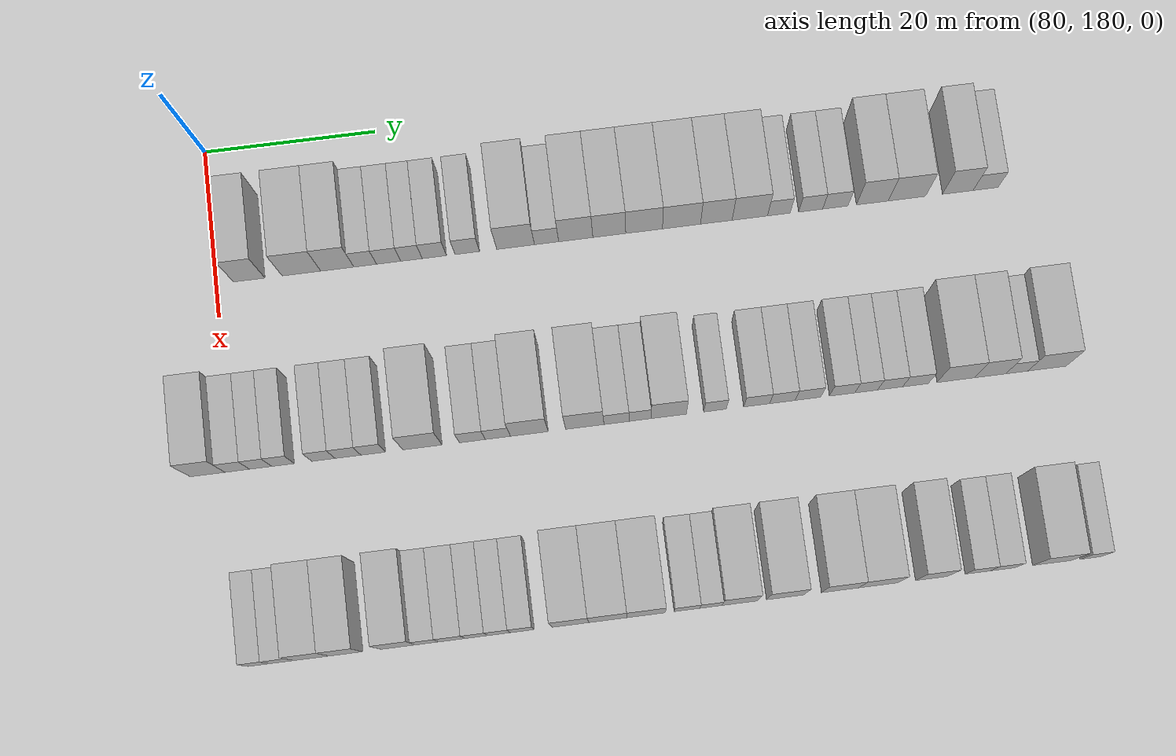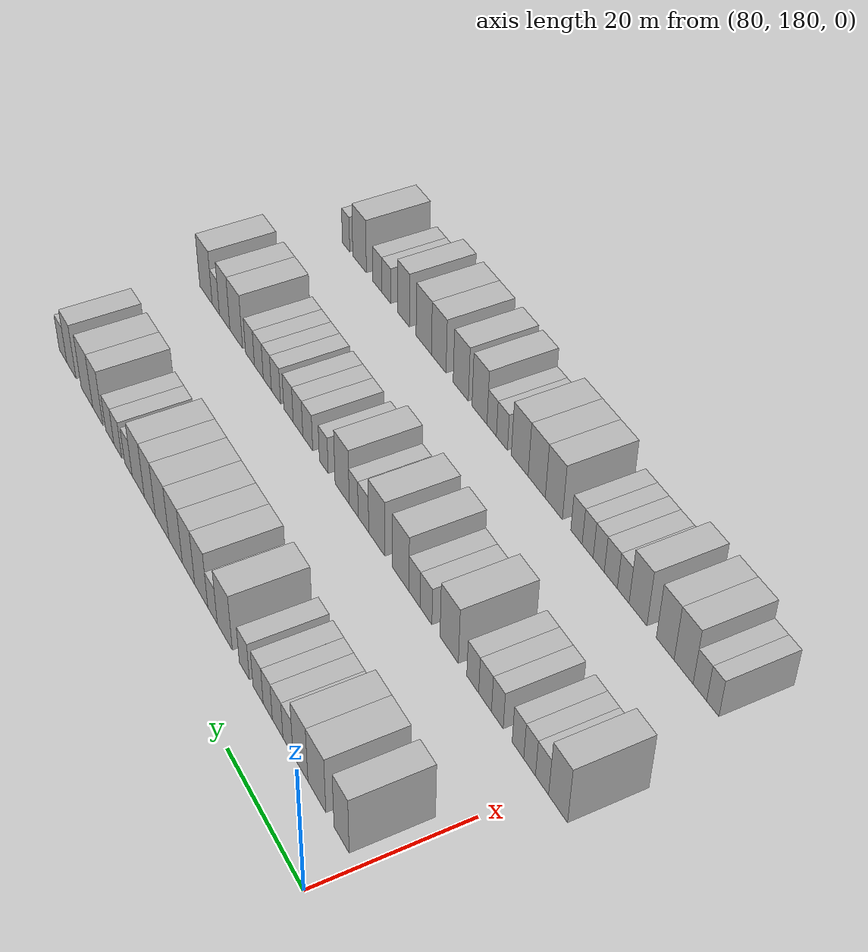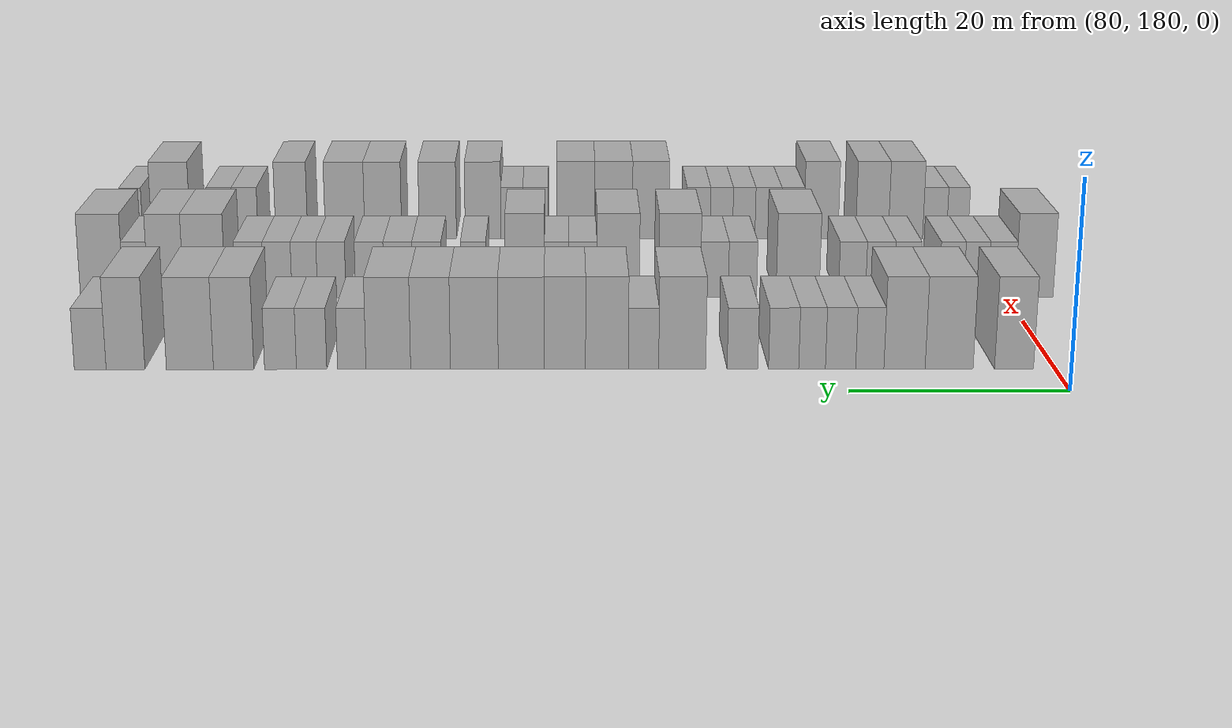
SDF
<sdf version="1.6">
 <world name="default">
  <model name="building_701">
   <static>1</static>
   <pose>91.0000 183.8301 0 0.000000 0.000000 0.000000</pose>
   <link name="link">
    <pose>0 0 4.50 0 0 0</pose>
    <collision name="collision"><geometry><box><size>10.0000 3.6454 9.0000</size></box></geometry></collision>
    <visual name="visual">
     <cast_shadows>0</cast_shadows>
     <geometry><box><size>10.0000 3.6454 9.0000</size></box></geometry>
     <material>
      <script>
       <uri>model://HANNAS_wall/materials/scripts</uri>
       <uri>model://HANNAS_wall/materials/textures</uri>
       <name>vrc/HANNAS_wall</name>
      </script>
     </material>
    </visual>
   </link>
  </model>
  <model name="building_702">
   <static>1</static>
   <pose>91.0000 189.8946 0 0.000000 0.000000 0.000000</pose>
   <link name="link">
    <pose>0 0 4.50 0 0 0</pose>
    <collision name="collision"><geometry><box><size>10.0000 4.4837 9.0000</size></box></geometry></collision>
    <visual name="visual">
     <cast_shadows>0</cast_shadows>
     <geometry><box><size>10.0000 4.4837 9.0000</size></box></geometry>
     <material>
      <script>
       <uri>model://HANNAS_wall/materials/scripts</uri>
       <uri>model://HANNAS_wall/materials/textures</uri>
       <name>vrc/HANNAS_wall</name>
      </script>
     </material>
    </visual>
   </link>
  </model>
  <model name="building_703">
   <static>1</static>
   <pose>91.0000 194.0625 0 0.000000 0.000000 0.000000</pose>
   <link name="link">
    <pose>0 0 4.50 0 0 0</pose>
    <collision name="collision"><geometry><box><size>10.0000 3.8520 9.0000</size></box></geometry></collision>
    <visual name="visual">
     <cast_shadows>0</cast_shadows>
     <geometry><box><size>10.0000 3.8520 9.0000</size></box></geometry>
     <material>
      <script>
       <uri>model://HANNAS_wall/materials/scripts</uri>
       <uri>model://HANNAS_wall/materials/textures</uri>
       <name>vrc/HANNAS_wall</name>
      </script>
     </material>
    </visual>
   </link>
  </model>
  <model name="building_704">
   <static>1</static>
   <pose>91.0000 197.3091 0 0.000000 0.000000 0.000000</pose>
   <link name="link">
    <pose>0 0 3.00 0 0 0</pose>
    <collision name="collision"><geometry><box><size>10.0000 2.6413 6.0000</size></box></geometry></collision>
    <visual name="visual">
     <cast_shadows>0</cast_shadows>
     <geometry><box><size>10.0000 2.6413 6.0000</size></box></geometry>
     <material>
      <script>
       <uri>model://HANNAS_wall/materials/scripts</uri>
       <uri>model://HANNAS_wall/materials/textures</uri>
       <name>vrc/HANNAS_wall</name>
      </script>
     </material>
    </visual>
   </link>
  </model>
  <model name="building_705">
   <static>1</static>
   <pose>91.0000 200.0430 0 0.000000 0.000000 0.000000</pose>
   <link name="link">
    <pose>0 0 3.00 0 0 0</pose>
    <collision name="collision"><geometry><box><size>10.0000 2.8265 6.0000</size></box></geometry></collision>
    <visual name="visual">
     <cast_shadows>0</cast_shadows>
     <geometry><box><size>10.0000 2.8265 6.0000</size></box></geometry>
     <material>
      <script>
       <uri>model://HANNAS_wall/materials/scripts</uri>
       <uri>model://HANNAS_wall/materials/textures</uri>
       <name>vrc/HANNAS_wall</name>
      </script>
     </material>
    </visual>
   </link>
  </model>
  <model name="building_706">
   <static>1</static>
   <pose>91.0000 202.7038 0 0.000000 0.000000 0.000000</pose>
   <link name="link">
    <pose>0 0 3.00 0 0 0</pose>
    <collision name="collision"><geometry><box><size>10.0000 2.4952 6.0000</size></box></geometry></collision>
    <visual name="visual">
     <cast_shadows>0</cast_shadows>
     <geometry><box><size>10.0000 2.4952 6.0000</size></box></geometry>
     <material>
      <script>
       <uri>model://HANNAS_wall/materials/scripts</uri>
       <uri>model://HANNAS_wall/materials/textures</uri>
       <name>vrc/HANNAS_wall</name>
      </script>
     </material>
    </visual>
   </link>
  </model>
  <model name="building_707">
   <static>1</static>
   <pose>91.0000 205.3618 0 0.000000 0.000000 0.000000</pose>
   <link name="link">
    <pose>0 0 3.00 0 0 0</pose>
    <collision name="collision"><geometry><box><size>10.0000 2.8207 6.0000</size></box></geometry></collision>
    <visual name="visual">
     <cast_shadows>0</cast_shadows>
     <geometry><box><size>10.0000 2.8207 6.0000</size></box></geometry>
     <material>
      <script>
       <uri>model://HANNAS_wall/materials/scripts</uri>
       <uri>model://HANNAS_wall/materials/textures</uri>
       <name>vrc/HANNAS_wall</name>
      </script>
     </material>
    </visual>
   </link>
  </model>
  <model name="building_708">
   <static>1</static>
   <pose>91.0000 209.2050 0 0.000000 0.000000 0.000000</pose>
   <link name="link">
    <pose>0 0 3.00 0 0 0</pose>
    <collision name="collision"><geometry><box><size>10.0000 2.8657 6.0000</size></box></geometry></collision>
    <visual name="visual">
     <cast_shadows>0</cast_shadows>
     <geometry><box><size>10.0000 2.8657 6.0000</size></box></geometry>
     <material>
      <script>
       <uri>model://HANNAS_wall/materials/scripts</uri>
       <uri>model://HANNAS_wall/materials/textures</uri>
       <name>vrc/HANNAS_wall</name>
      </script>
     </material>
    </visual>
   </link>
  </model>
  <model name="building_709">
   <static>1</static>
   <pose>91.0000 214.8375 0 0.000000 0.000000 0.000000</pose>
   <link name="link">
    <pose>0 0 4.50 0 0 0</pose>
    <collision name="collision"><geometry><box><size>10.0000 4.3994 9.0000</size></box></geometry></collision>
    <visual name="visual">
     <cast_shadows>0</cast_shadows>
     <geometry><box><size>10.0000 4.3994 9.0000</size></box></geometry>
     <material>
      <script>
       <uri>model://HANNAS_wall/materials/scripts</uri>
       <uri>model://HANNAS_wall/materials/textures</uri>
       <name>vrc/HANNAS_wall</name>
      </script>
     </material>
    </visual>
   </link>
  </model>
  <model name="building_710">
   <static>1</static>
   <pose>91.0000 218.4548 0 0.000000 0.000000 0.000000</pose>
   <link name="link">
    <pose>0 0 3.00 0 0 0</pose>
    <collision name="collision"><geometry><box><size>10.0000 2.8352 6.0000</size></box></geometry></collision>
    <visual name="visual">
     <cast_shadows>0</cast_shadows>
     <geometry><box><size>10.0000 2.8352 6.0000</size></box></geometry>
     <material>
      <script>
       <uri>model://HANNAS_wall/materials/scripts</uri>
       <uri>model://HANNAS_wall/materials/textures</uri>
       <name>vrc/HANNAS_wall</name>
      </script>
     </material>
    </visual>
   </link>
  </model>
  <model name="building_711">
   <static>1</static>
   <pose>91.0000 221.8675 0 0.000000 0.000000 0.000000</pose>
   <link name="link">
    <pose>0 0 4.50 0 0 0</pose>
    <collision name="collision"><geometry><box><size>10.0000 3.9902 9.0000</size></box></geometry></collision>
    <visual name="visual">
     <cast_shadows>0</cast_shadows>
     <geometry><box><size>10.0000 3.9902 9.0000</size></box></geometry>
     <material>
      <script>
       <uri>model://HANNAS_wall/materials/scripts</uri>
       <uri>model://HANNAS_wall/materials/textures</uri>
       <name>vrc/HANNAS_wall</name>
      </script>
     </material>
    </visual>
   </link>
  </model>
  <model name="building_712">
   <static>1</static>
   <pose>91.0000 225.7885 0 0.000000 0.000000 0.000000</pose>
   <link name="link">
    <pose>0 0 4.50 0 0 0</pose>
    <collision name="collision"><geometry><box><size>10.0000 3.8519 9.0000</size></box></geometry></collision>
    <visual name="visual">
     <cast_shadows>0</cast_shadows>
     <geometry><box><size>10.0000 3.8519 9.0000</size></box></geometry>
     <material>
      <script>
       <uri>model://HANNAS_wall/materials/scripts</uri>
       <uri>model://HANNAS_wall/materials/textures</uri>
       <name>vrc/HANNAS_wall</name>
      </script>
     </material>
    </visual>
   </link>
  </model>
  <model name="building_713">
   <static>1</static>
   <pose>91.0000 229.8638 0 0.000000 0.000000 0.000000</pose>
   <link name="link">
    <pose>0 0 4.50 0 0 0</pose>
    <collision name="collision"><geometry><box><size>10.0000 4.2986 9.0000</size></box></geometry></collision>
    <visual name="visual">
     <cast_shadows>0</cast_shadows>
     <geometry><box><size>10.0000 4.2986 9.0000</size></box></geometry>
     <material>
      <script>
       <uri>model://HANNAS_wall/materials/scripts</uri>
       <uri>model://HANNAS_wall/materials/textures</uri>
       <name>vrc/HANNAS_wall</name>
      </script>
     </material>
    </visual>
   </link>
  </model>
  <model name="building_714">
   <static>1</static>
   <pose>91.0000 234.2440 0 0.000000 0.000000 0.000000</pose>
   <link name="link">
    <pose>0 0 4.50 0 0 0</pose>
    <collision name="collision"><geometry><box><size>10.0000 4.4618 9.0000</size></box></geometry></collision>
    <visual name="visual">
     <cast_shadows>0</cast_shadows>
     <geometry><box><size>10.0000 4.4618 9.0000</size></box></geometry>
     <material>
      <script>
       <uri>model://HANNAS_wall/materials/scripts</uri>
       <uri>model://HANNAS_wall/materials/textures</uri>
       <name>vrc/HANNAS_wall</name>
      </script>
     </material>
    </visual>
   </link>
  </model>
  <model name="building_715">
   <static>1</static>
   <pose>91.0000 238.3309 0 0.000000 0.000000 0.000000</pose>
   <link name="link">
    <pose>0 0 4.50 0 0 0</pose>
    <collision name="collision"><geometry><box><size>10.0000 3.7121 9.0000</size></box></geometry></collision>
    <visual name="visual">
     <cast_shadows>0</cast_shadows>
     <geometry><box><size>10.0000 3.7121 9.0000</size></box></geometry>
     <material>
      <script>
       <uri>model://HANNAS_wall/materials/scripts</uri>
       <uri>model://HANNAS_wall/materials/textures</uri>
       <name>vrc/HANNAS_wall</name>
      </script>
     </material>
    </visual>
   </link>
  </model>
  <model name="building_716">
   <static>1</static>
   <pose>91.0000 242.2716 0 0.000000 0.000000 0.000000</pose>
   <link name="link">
    <pose>0 0 4.50 0 0 0</pose>
    <collision name="collision"><geometry><box><size>10.0000 4.1693 9.0000</size></box></geometry></collision>
    <visual name="visual">
     <cast_shadows>0</cast_shadows>
     <geometry><box><size>10.0000 4.1693 9.0000</size></box></geometry>
     <material>
      <script>
       <uri>model://HANNAS_wall/materials/scripts</uri>
       <uri>model://HANNAS_wall/materials/textures</uri>
       <name>vrc/HANNAS_wall</name>
      </script>
     </material>
    </visual>
   </link>
  </model>
  <model name="building_717">
   <static>1</static>
   <pose>91.0000 245.6842 0 0.000000 0.000000 0.000000</pose>
   <link name="link">
    <pose>0 0 3.00 0 0 0</pose>
    <collision name="collision"><geometry><box><size>10.0000 2.6557 6.0000</size></box></geometry></collision>
    <visual name="visual">
     <cast_shadows>0</cast_shadows>
     <geometry><box><size>10.0000 2.6557 6.0000</size></box></geometry>
     <material>
      <script>
       <uri>model://HANNAS_wall/materials/scripts</uri>
       <uri>model://HANNAS_wall/materials/textures</uri>
       <name>vrc/HANNAS_wall</name>
      </script>
     </material>
    </visual>
   </link>
  </model>
  <model name="building_718">
   <static>1</static>
   <pose>91.0000 249.4294 0 0.000000 0.000000 0.000000</pose>
   <link name="link">
    <pose>0 0 3.00 0 0 0</pose>
    <collision name="collision"><geometry><box><size>10.0000 2.8348 6.0000</size></box></geometry></collision>
    <visual name="visual">
     <cast_shadows>0</cast_shadows>
     <geometry><box><size>10.0000 2.8348 6.0000</size></box></geometry>
     <material>
      <script>
       <uri>model://HANNAS_wall/materials/scripts</uri>
       <uri>model://HANNAS_wall/materials/textures</uri>
       <name>vrc/HANNAS_wall</name>
      </script>
     </material>
    </visual>
   </link>
  </model>
  <model name="building_719">
   <static>1</static>
   <pose>91.0000 252.3336 0 0.000000 0.000000 0.000000</pose>
   <link name="link">
    <pose>0 0 3.00 0 0 0</pose>
    <collision name="collision"><geometry><box><size>10.0000 2.9736 6.0000</size></box></geometry></collision>
    <visual name="visual">
     <cast_shadows>0</cast_shadows>
     <geometry><box><size>10.0000 2.9736 6.0000</size></box></geometry>
     <material>
      <script>
       <uri>model://HANNAS_wall/materials/scripts</uri>
       <uri>model://HANNAS_wall/materials/textures</uri>
       <name>vrc/HANNAS_wall</name>
      </script>
     </material>
    </visual>
   </link>
  </model>
  <model name="building_720">
   <static>1</static>
   <pose>91.0000 256.7059 0 0.000000 0.000000 0.000000</pose>
   <link name="link">
    <pose>0 0 4.50 0 0 0</pose>
    <collision name="collision"><geometry><box><size>10.0000 3.7710 9.0000</size></box></geometry></collision>
    <visual name="visual">
     <cast_shadows>0</cast_shadows>
     <geometry><box><size>10.0000 3.7710 9.0000</size></box></geometry>
     <material>
      <script>
       <uri>model://HANNAS_wall/materials/scripts</uri>
       <uri>model://HANNAS_wall/materials/textures</uri>
       <name>vrc/HANNAS_wall</name>
      </script>
     </material>
    </visual>
   </link>
  </model>
  <model name="building_721">
   <static>1</static>
   <pose>91.0000 260.7851 0 0.000000 0.000000 0.000000</pose>
   <link name="link">
    <pose>0 0 4.50 0 0 0</pose>
    <collision name="collision"><geometry><box><size>10.0000 4.3874 9.0000</size></box></geometry></collision>
    <visual name="visual">
     <cast_shadows>0</cast_shadows>
     <geometry><box><size>10.0000 4.3874 9.0000</size></box></geometry>
     <material>
      <script>
       <uri>model://HANNAS_wall/materials/scripts</uri>
       <uri>model://HANNAS_wall/materials/textures</uri>
       <name>vrc/HANNAS_wall</name>
      </script>
     </material>
    </visual>
   </link>
  </model>
  <model name="building_722">
   <static>1</static>
   <pose>91.0000 266.7912 0 0.000000 0.000000 0.000000</pose>
   <link name="link">
    <pose>0 0 4.50 0 0 0</pose>
    <collision name="collision"><geometry><box><size>10.0000 3.6249 9.0000</size></box></geometry></collision>
    <visual name="visual">
     <cast_shadows>0</cast_shadows>
     <geometry><box><size>10.0000 3.6249 9.0000</size></box></geometry>
     <material>
      <script>
       <uri>model://HANNAS_wall/materials/scripts</uri>
       <uri>model://HANNAS_wall/materials/textures</uri>
       <name>vrc/HANNAS_wall</name>
      </script>
     </material>
    </visual>
   </link>
  </model>
  <model name="building_723">
   <static>1</static>
   <pose>91.0000 270.0854 0 0.000000 0.000000 0.000000</pose>
   <link name="link">
    <pose>0 0 3.00 0 0 0</pose>
    <collision name="collision"><geometry><box><size>10.0000 2.9635 6.0000</size></box></geometry></collision>
    <visual name="visual">
     <cast_shadows>0</cast_shadows>
     <geometry><box><size>10.0000 2.9635 6.0000</size></box></geometry>
     <material>
      <script>
       <uri>model://HANNAS_wall/materials/scripts</uri>
       <uri>model://HANNAS_wall/materials/textures</uri>
       <name>vrc/HANNAS_wall</name>
      </script>
     </material>
    </visual>
   </link>
  </model>
  <model name="building_879">
   <static>1</static>
   <pose>113.0000 177.1791 0 0.000000 0.000000 0.000000</pose>
   <link name="link">
    <pose>0 0 4.50 0 0 0</pose>
    <collision name="collision"><geometry><box><size>10.0000 3.9513 9.0000</size></box></geometry></collision>
    <visual name="visual">
     <cast_shadows>0</cast_shadows>
     <geometry><box><size>10.0000 3.9513 9.0000</size></box></geometry>
     <material>
      <script>
       <uri>model://HANNAS_wall/materials/scripts</uri>
       <uri>model://HANNAS_wall/materials/textures</uri>
       <name>vrc/HANNAS_wall</name>
      </script>
     </material>
    </visual>
   </link>
  </model>
  <model name="building_880">
   <static>1</static>
   <pose>113.0000 180.5496 0 0.000000 0.000000 0.000000</pose>
   <link name="link">
    <pose>0 0 3.00 0 0 0</pose>
    <collision name="collision"><geometry><box><size>10.0000 2.7899 6.0000</size></box></geometry></collision>
    <visual name="visual">
     <cast_shadows>0</cast_shadows>
     <geometry><box><size>10.0000 2.7899 6.0000</size></box></geometry>
     <material>
      <script>
       <uri>model://HANNAS_wall/materials/scripts</uri>
       <uri>model://HANNAS_wall/materials/textures</uri>
       <name>vrc/HANNAS_wall</name>
      </script>
     </material>
    </visual>
   </link>
  </model>
  <model name="building_881">
   <static>1</static>
   <pose>113.0000 183.2139 0 0.000000 0.000000 0.000000</pose>
   <link name="link">
    <pose>0 0 3.00 0 0 0</pose>
    <collision name="collision"><geometry><box><size>10.0000 2.5387 6.0000</size></box></geometry></collision>
    <visual name="visual">
     <cast_shadows>0</cast_shadows>
     <geometry><box><size>10.0000 2.5387 6.0000</size></box></geometry>
     <material>
      <script>
       <uri>model://HANNAS_wall/materials/scripts</uri>
       <uri>model://HANNAS_wall/materials/textures</uri>
       <name>vrc/HANNAS_wall</name>
      </script>
     </material>
    </visual>
   </link>
  </model>
  <model name="building_882">
   <static>1</static>
   <pose>113.0000 185.7586 0 0.000000 0.000000 0.000000</pose>
   <link name="link">
    <pose>0 0 3.00 0 0 0</pose>
    <collision name="collision"><geometry><box><size>10.0000 2.5505 6.0000</size></box></geometry></collision>
    <visual name="visual">
     <cast_shadows>0</cast_shadows>
     <geometry><box><size>10.0000 2.5505 6.0000</size></box></geometry>
     <material>
      <script>
       <uri>model://HANNAS_wall/materials/scripts</uri>
       <uri>model://HANNAS_wall/materials/textures</uri>
       <name>vrc/HANNAS_wall</name>
      </script>
     </material>
    </visual>
   </link>
  </model>
  <model name="building_883">
   <static>1</static>
   <pose>113.0000 190.3606 0 0.000000 0.000000 0.000000</pose>
   <link name="link">
    <pose>0 0 3.00 0 0 0</pose>
    <collision name="collision"><geometry><box><size>10.0000 2.6535 6.0000</size></box></geometry></collision>
    <visual name="visual">
     <cast_shadows>0</cast_shadows>
     <geometry><box><size>10.0000 2.6535 6.0000</size></box></geometry>
     <material>
      <script>
       <uri>model://HANNAS_wall/materials/scripts</uri>
       <uri>model://HANNAS_wall/materials/textures</uri>
       <name>vrc/HANNAS_wall</name>
      </script>
     </material>
    </visual>
   </link>
  </model>
  <model name="building_884">
   <static>1</static>
   <pose>113.0000 193.1624 0 0.000000 0.000000 0.000000</pose>
   <link name="link">
    <pose>0 0 3.00 0 0 0</pose>
    <collision name="collision"><geometry><box><size>10.0000 2.9501 6.0000</size></box></geometry></collision>
    <visual name="visual">
     <cast_shadows>0</cast_shadows>
     <geometry><box><size>10.0000 2.9501 6.0000</size></box></geometry>
     <material>
      <script>
       <uri>model://HANNAS_wall/materials/scripts</uri>
       <uri>model://HANNAS_wall/materials/textures</uri>
       <name>vrc/HANNAS_wall</name>
      </script>
     </material>
    </visual>
   </link>
  </model>
  <model name="building_885">
   <static>1</static>
   <pose>113.0000 196.0360 0 0.000000 0.000000 0.000000</pose>
   <link name="link">
    <pose>0 0 3.00 0 0 0</pose>
    <collision name="collision"><geometry><box><size>10.0000 2.7971 6.0000</size></box></geometry></collision>
    <visual name="visual">
     <cast_shadows>0</cast_shadows>
     <geometry><box><size>10.0000 2.7971 6.0000</size></box></geometry>
     <material>
      <script>
       <uri>model://HANNAS_wall/materials/scripts</uri>
       <uri>model://HANNAS_wall/materials/textures</uri>
       <name>vrc/HANNAS_wall</name>
      </script>
     </material>
    </visual>
   </link>
  </model>
  <model name="building_886">
   <static>1</static>
   <pose>113.0000 201.6682 0 0.000000 0.000000 0.000000</pose>
   <link name="link">
    <pose>0 0 4.50 0 0 0</pose>
    <collision name="collision"><geometry><box><size>10.0000 4.4674 9.0000</size></box></geometry></collision>
    <visual name="visual">
     <cast_shadows>0</cast_shadows>
     <geometry><box><size>10.0000 4.4674 9.0000</size></box></geometry>
     <material>
      <script>
       <uri>model://HANNAS_wall/materials/scripts</uri>
       <uri>model://HANNAS_wall/materials/textures</uri>
       <name>vrc/HANNAS_wall</name>
      </script>
     </material>
    </visual>
   </link>
  </model>
  <model name="building_887">
   <static>1</static>
   <pose>113.0000 207.3719 0 0.000000 0.000000 0.000000</pose>
   <link name="link">
    <pose>0 0 3.00 0 0 0</pose>
    <collision name="collision"><geometry><box><size>10.0000 2.9401 6.0000</size></box></geometry></collision>
    <visual name="visual">
     <cast_shadows>0</cast_shadows>
     <geometry><box><size>10.0000 2.9401 6.0000</size></box></geometry>
     <material>
      <script>
       <uri>model://HANNAS_wall/materials/scripts</uri>
       <uri>model://HANNAS_wall/materials/textures</uri>
       <name>vrc/HANNAS_wall</name>
      </script>
     </material>
    </visual>
   </link>
  </model>
  <model name="building_888">
   <static>1</static>
   <pose>113.0000 210.2811 0 0.000000 0.000000 0.000000</pose>
   <link name="link">
    <pose>0 0 3.00 0 0 0</pose>
    <collision name="collision"><geometry><box><size>10.0000 2.8784 6.0000</size></box></geometry></collision>
    <visual name="visual">
     <cast_shadows>0</cast_shadows>
     <geometry><box><size>10.0000 2.8784 6.0000</size></box></geometry>
     <material>
      <script>
       <uri>model://HANNAS_wall/materials/scripts</uri>
       <uri>model://HANNAS_wall/materials/textures</uri>
       <name>vrc/HANNAS_wall</name>
      </script>
     </material>
    </visual>
   </link>
  </model>
  <model name="building_889">
   <static>1</static>
   <pose>113.0000 213.8808 0 0.000000 0.000000 0.000000</pose>
   <link name="link">
    <pose>0 0 4.50 0 0 0</pose>
    <collision name="collision"><geometry><box><size>10.0000 4.3209 9.0000</size></box></geometry></collision>
    <visual name="visual">
     <cast_shadows>0</cast_shadows>
     <geometry><box><size>10.0000 4.3209 9.0000</size></box></geometry>
     <material>
      <script>
       <uri>model://HANNAS_wall/materials/scripts</uri>
       <uri>model://HANNAS_wall/materials/textures</uri>
       <name>vrc/HANNAS_wall</name>
      </script>
     </material>
    </visual>
   </link>
  </model>
  <model name="building_890">
   <static>1</static>
   <pose>113.0000 220.2386 0 0.000000 0.000000 0.000000</pose>
   <link name="link">
    <pose>0 0 4.50 0 0 0</pose>
    <collision name="collision"><geometry><box><size>10.0000 4.3947 9.0000</size></box></geometry></collision>
    <visual name="visual">
     <cast_shadows>0</cast_shadows>
     <geometry><box><size>10.0000 4.3947 9.0000</size></box></geometry>
     <material>
      <script>
       <uri>model://HANNAS_wall/materials/scripts</uri>
       <uri>model://HANNAS_wall/materials/textures</uri>
       <name>vrc/HANNAS_wall</name>
      </script>
     </material>
    </visual>
   </link>
  </model>
  <model name="building_891">
   <static>1</static>
   <pose>113.0000 223.8857 0 0.000000 0.000000 0.000000</pose>
   <link name="link">
    <pose>0 0 3.00 0 0 0</pose>
    <collision name="collision"><geometry><box><size>10.0000 2.8995 6.0000</size></box></geometry></collision>
    <visual name="visual">
     <cast_shadows>0</cast_shadows>
     <geometry><box><size>10.0000 2.8995 6.0000</size></box></geometry>
     <material>
      <script>
       <uri>model://HANNAS_wall/materials/scripts</uri>
       <uri>model://HANNAS_wall/materials/textures</uri>
       <name>vrc/HANNAS_wall</name>
      </script>
     </material>
    </visual>
   </link>
  </model>
  <model name="building_892">
   <static>1</static>
   <pose>113.0000 226.5921 0 0.000000 0.000000 0.000000</pose>
   <link name="link">
    <pose>0 0 3.00 0 0 0</pose>
    <collision name="collision"><geometry><box><size>10.0000 2.5133 6.0000</size></box></geometry></collision>
    <visual name="visual">
     <cast_shadows>0</cast_shadows>
     <geometry><box><size>10.0000 2.5133 6.0000</size></box></geometry>
     <material>
      <script>
       <uri>model://HANNAS_wall/materials/scripts</uri>
       <uri>model://HANNAS_wall/materials/textures</uri>
       <name>vrc/HANNAS_wall</name>
      </script>
     </material>
    </visual>
   </link>
  </model>
  <model name="building_893">
   <static>1</static>
   <pose>113.0000 229.8741 0 0.000000 0.000000 0.000000</pose>
   <link name="link">
    <pose>0 0 4.50 0 0 0</pose>
    <collision name="collision"><geometry><box><size>10.0000 4.0506 9.0000</size></box></geometry></collision>
    <visual name="visual">
     <cast_shadows>0</cast_shadows>
     <geometry><box><size>10.0000 4.0506 9.0000</size></box></geometry>
     <material>
      <script>
       <uri>model://HANNAS_wall/materials/scripts</uri>
       <uri>model://HANNAS_wall/materials/textures</uri>
       <name>vrc/HANNAS_wall</name>
      </script>
     </material>
    </visual>
   </link>
  </model>
  <model name="building_894">
   <static>1</static>
   <pose>113.0000 235.1963 0 0.000000 0.000000 0.000000</pose>
   <link name="link">
    <pose>0 0 3.00 0 0 0</pose>
    <collision name="collision"><geometry><box><size>10.0000 2.5939 6.0000</size></box></geometry></collision>
    <visual name="visual">
     <cast_shadows>0</cast_shadows>
     <geometry><box><size>10.0000 2.5939 6.0000</size></box></geometry>
     <material>
      <script>
       <uri>model://HANNAS_wall/materials/scripts</uri>
       <uri>model://HANNAS_wall/materials/textures</uri>
       <name>vrc/HANNAS_wall</name>
      </script>
     </material>
    </visual>
   </link>
  </model>
  <model name="building_895">
   <static>1</static>
   <pose>113.0000 239.9912 0 0.000000 0.000000 0.000000</pose>
   <link name="link">
    <pose>0 0 3.00 0 0 0</pose>
    <collision name="collision"><geometry><box><size>10.0000 2.9959 6.0000</size></box></geometry></collision>
    <visual name="visual">
     <cast_shadows>0</cast_shadows>
     <geometry><box><size>10.0000 2.9959 6.0000</size></box></geometry>
     <material>
      <script>
       <uri>model://HANNAS_wall/materials/scripts</uri>
       <uri>model://HANNAS_wall/materials/textures</uri>
       <name>vrc/HANNAS_wall</name>
      </script>
     </material>
    </visual>
   </link>
  </model>
  <model name="building_896">
   <static>1</static>
   <pose>113.0000 242.9660 0 0.000000 0.000000 0.000000</pose>
   <link name="link">
    <pose>0 0 3.00 0 0 0</pose>
    <collision name="collision"><geometry><box><size>10.0000 2.9536 6.0000</size></box></geometry></collision>
    <visual name="visual">
     <cast_shadows>0</cast_shadows>
     <geometry><box><size>10.0000 2.9536 6.0000</size></box></geometry>
     <material>
      <script>
       <uri>model://HANNAS_wall/materials/scripts</uri>
       <uri>model://HANNAS_wall/materials/textures</uri>
       <name>vrc/HANNAS_wall</name>
      </script>
     </material>
    </visual>
   </link>
  </model>
  <model name="building_897">
   <static>1</static>
   <pose>113.0000 245.9141 0 0.000000 0.000000 0.000000</pose>
   <link name="link">
    <pose>0 0 3.00 0 0 0</pose>
    <collision name="collision"><geometry><box><size>10.0000 2.9426 6.0000</size></box></geometry></collision>
    <visual name="visual">
     <cast_shadows>0</cast_shadows>
     <geometry><box><size>10.0000 2.9426 6.0000</size></box></geometry>
     <material>
      <script>
       <uri>model://HANNAS_wall/materials/scripts</uri>
       <uri>model://HANNAS_wall/materials/textures</uri>
       <name>vrc/HANNAS_wall</name>
      </script>
     </material>
    </visual>
   </link>
  </model>
  <model name="building_898">
   <static>1</static>
   <pose>113.0000 249.8531 0 0.000000 0.000000 0.000000</pose>
   <link name="link">
    <pose>0 0 3.00 0 0 0</pose>
    <collision name="collision"><geometry><box><size>10.0000 2.9354 6.0000</size></box></geometry></collision>
    <visual name="visual">
     <cast_shadows>0</cast_shadows>
     <geometry><box><size>10.0000 2.9354 6.0000</size></box></geometry>
     <material>
      <script>
       <uri>model://HANNAS_wall/materials/scripts</uri>
       <uri>model://HANNAS_wall/materials/textures</uri>
       <name>vrc/HANNAS_wall</name>
      </script>
     </material>
    </visual>
   </link>
  </model>
  <model name="building_899">
   <static>1</static>
   <pose>113.0000 252.6407 0 0.000000 0.000000 0.000000</pose>
   <link name="link">
    <pose>0 0 3.00 0 0 0</pose>
    <collision name="collision"><geometry><box><size>10.0000 2.6397 6.0000</size></box></geometry></collision>
    <visual name="visual">
     <cast_shadows>0</cast_shadows>
     <geometry><box><size>10.0000 2.6397 6.0000</size></box></geometry>
     <material>
      <script>
       <uri>model://HANNAS_wall/materials/scripts</uri>
       <uri>model://HANNAS_wall/materials/textures</uri>
       <name>vrc/HANNAS_wall</name>
      </script>
     </material>
    </visual>
   </link>
  </model>
  <model name="building_900">
   <static>1</static>
   <pose>113.0000 255.4075 0 0.000000 0.000000 0.000000</pose>
   <link name="link">
    <pose>0 0 3.00 0 0 0</pose>
    <collision name="collision"><geometry><box><size>10.0000 2.8939 6.0000</size></box></geometry></collision>
    <visual name="visual">
     <cast_shadows>0</cast_shadows>
     <geometry><box><size>10.0000 2.8939 6.0000</size></box></geometry>
     <material>
      <script>
       <uri>model://HANNAS_wall/materials/scripts</uri>
       <uri>model://HANNAS_wall/materials/textures</uri>
       <name>vrc/HANNAS_wall</name>
      </script>
     </material>
    </visual>
   </link>
  </model>
  <model name="building_901">
   <static>1</static>
   <pose>113.0000 258.3411 0 0.000000 0.000000 0.000000</pose>
   <link name="link">
    <pose>0 0 3.00 0 0 0</pose>
    <collision name="collision"><geometry><box><size>10.0000 2.9732 6.0000</size></box></geometry></collision>
    <visual name="visual">
     <cast_shadows>0</cast_shadows>
     <geometry><box><size>10.0000 2.9732 6.0000</size></box></geometry>
     <material>
      <script>
       <uri>model://HANNAS_wall/materials/scripts</uri>
       <uri>model://HANNAS_wall/materials/textures</uri>
       <name>vrc/HANNAS_wall</name>
      </script>
     </material>
    </visual>
   </link>
  </model>
  <model name="building_902">
   <static>1</static>
   <pose>113.0000 262.9914 0 0.000000 0.000000 0.000000</pose>
   <link name="link">
    <pose>0 0 4.50 0 0 0</pose>
    <collision name="collision"><geometry><box><size>10.0000 4.3274 9.0000</size></box></geometry></collision>
    <visual name="visual">
     <cast_shadows>0</cast_shadows>
     <geometry><box><size>10.0000 4.3274 9.0000</size></box></geometry>
     <material>
      <script>
       <uri>model://HANNAS_wall/materials/scripts</uri>
       <uri>model://HANNAS_wall/materials/textures</uri>
       <name>vrc/HANNAS_wall</name>
      </script>
     </material>
    </visual>
   </link>
  </model>
  <model name="building_903">
   <static>1</static>
   <pose>113.0000 266.9864 0 0.000000 0.000000 0.000000</pose>
   <link name="link">
    <pose>0 0 4.50 0 0 0</pose>
    <collision name="collision"><geometry><box><size>10.0000 3.6625 9.0000</size></box></geometry></collision>
    <visual name="visual">
     <cast_shadows>0</cast_shadows>
     <geometry><box><size>10.0000 3.6625 9.0000</size></box></geometry>
     <material>
      <script>
       <uri>model://HANNAS_wall/materials/scripts</uri>
       <uri>model://HANNAS_wall/materials/textures</uri>
       <name>vrc/HANNAS_wall</name>
      </script>
     </material>
    </visual>
   </link>
  </model>
  <model name="building_904">
   <static>1</static>
   <pose>113.0000 270.0984 0 0.000000 0.000000 0.000000</pose>
   <link name="link">
    <pose>0 0 3.00 0 0 0</pose>
    <collision name="collision"><geometry><box><size>10.0000 2.5614 6.0000</size></box></geometry></collision>
    <visual name="visual">
     <cast_shadows>0</cast_shadows>
     <geometry><box><size>10.0000 2.5614 6.0000</size></box></geometry>
     <material>
      <script>
       <uri>model://HANNAS_wall/materials/scripts</uri>
       <uri>model://HANNAS_wall/materials/textures</uri>
       <name>vrc/HANNAS_wall</name>
      </script>
     </material>
    </visual>
   </link>
  </model>
  <model name="building_905">
   <static>1</static>
   <pose>113.0000 273.6001 0 0.000000 0.000000 0.000000</pose>
   <link name="link">
    <pose>0 0 4.50 0 0 0</pose>
    <collision name="collision"><geometry><box><size>10.0000 4.4420 9.0000</size></box></geometry></collision>
    <visual name="visual">
     <cast_shadows>0</cast_shadows>
     <geometry><box><size>10.0000 4.4420 9.0000</size></box></geometry>
     <material>
      <script>
       <uri>model://HANNAS_wall/materials/scripts</uri>
       <uri>model://HANNAS_wall/materials/textures</uri>
       <name>vrc/HANNAS_wall</name>
      </script>
     </material>
    </visual>
   </link>
  </model>
  <model name="building_1066">
   <static>1</static>
   <pose>135.0000 181.1243 0 0.000000 0.000000 0.000000</pose>
   <link name="link">
    <pose>0 0 3.00 0 0 0</pose>
    <collision name="collision"><geometry><box><size>10.0000 2.4411 6.0000</size></box></geometry></collision>
    <visual name="visual">
     <cast_shadows>0</cast_shadows>
     <geometry><box><size>10.0000 2.4411 6.0000</size></box></geometry>
     <material>
      <script>
       <uri>model://HANNAS_wall/materials/scripts</uri>
       <uri>model://HANNAS_wall/materials/textures</uri>
       <name>vrc/HANNAS_wall</name>
      </script>
     </material>
    </visual>
   </link>
  </model>
  <model name="building_1067">
   <static>1</static>
   <pose>135.0000 183.7028 0 0.000000 0.000000 0.000000</pose>
   <link name="link">
    <pose>0 0 3.00 0 0 0</pose>
    <collision name="collision"><geometry><box><size>10.0000 2.7159 6.0000</size></box></geometry></collision>
    <visual name="visual">
     <cast_shadows>0</cast_shadows>
     <geometry><box><size>10.0000 2.7159 6.0000</size></box></geometry>
     <material>
      <script>
       <uri>model://HANNAS_wall/materials/scripts</uri>
       <uri>model://HANNAS_wall/materials/textures</uri>
       <name>vrc/HANNAS_wall</name>
      </script>
     </material>
    </visual>
   </link>
  </model>
  <model name="building_1068">
   <static>1</static>
   <pose>135.0000 187.0120 0 0.000000 0.000000 0.000000</pose>
   <link name="link">
    <pose>0 0 4.50 0 0 0</pose>
    <collision name="collision"><geometry><box><size>10.0000 3.9024 9.0000</size></box></geometry></collision>
    <visual name="visual">
     <cast_shadows>0</cast_shadows>
     <geometry><box><size>10.0000 3.9024 9.0000</size></box></geometry>
     <material>
      <script>
       <uri>model://HANNAS_wall/materials/scripts</uri>
       <uri>model://HANNAS_wall/materials/textures</uri>
       <name>vrc/HANNAS_wall</name>
      </script>
     </material>
    </visual>
   </link>
  </model>
  <model name="building_1069">
   <static>1</static>
   <pose>135.0000 190.8226 0 0.000000 0.000000 0.000000</pose>
   <link name="link">
    <pose>0 0 4.50 0 0 0</pose>
    <collision name="collision"><geometry><box><size>10.0000 3.7189 9.0000</size></box></geometry></collision>
    <visual name="visual">
     <cast_shadows>0</cast_shadows>
     <geometry><box><size>10.0000 3.7189 9.0000</size></box></geometry>
     <material>
      <script>
       <uri>model://HANNAS_wall/materials/scripts</uri>
       <uri>model://HANNAS_wall/materials/textures</uri>
       <name>vrc/HANNAS_wall</name>
      </script>
     </material>
    </visual>
   </link>
  </model>
  <model name="building_1070">
   <static>1</static>
   <pose>135.0000 196.6342 0 0.000000 0.000000 0.000000</pose>
   <link name="link">
    <pose>0 0 4.50 0 0 0</pose>
    <collision name="collision"><geometry><box><size>10.0000 3.9043 9.0000</size></box></geometry></collision>
    <visual name="visual">
     <cast_shadows>0</cast_shadows>
     <geometry><box><size>10.0000 3.9043 9.0000</size></box></geometry>
     <material>
      <script>
       <uri>model://HANNAS_wall/materials/scripts</uri>
       <uri>model://HANNAS_wall/materials/textures</uri>
       <name>vrc/HANNAS_wall</name>
      </script>
     </material>
    </visual>
   </link>
  </model>
  <model name="building_1071">
   <static>1</static>
   <pose>135.0000 199.8818 0 0.000000 0.000000 0.000000</pose>
   <link name="link">
    <pose>0 0 3.00 0 0 0</pose>
    <collision name="collision"><geometry><box><size>10.0000 2.5910 6.0000</size></box></geometry></collision>
    <visual name="visual">
     <cast_shadows>0</cast_shadows>
     <geometry><box><size>10.0000 2.5910 6.0000</size></box></geometry>
     <material>
      <script>
       <uri>model://HANNAS_wall/materials/scripts</uri>
       <uri>model://HANNAS_wall/materials/textures</uri>
       <name>vrc/HANNAS_wall</name>
      </script>
     </material>
    </visual>
   </link>
  </model>
  <model name="building_1072">
   <static>1</static>
   <pose>135.0000 202.6474 0 0.000000 0.000000 0.000000</pose>
   <link name="link">
    <pose>0 0 3.00 0 0 0</pose>
    <collision name="collision"><geometry><box><size>10.0000 2.9401 6.0000</size></box></geometry></collision>
    <visual name="visual">
     <cast_shadows>0</cast_shadows>
     <geometry><box><size>10.0000 2.9401 6.0000</size></box></geometry>
     <material>
      <script>
       <uri>model://HANNAS_wall/materials/scripts</uri>
       <uri>model://HANNAS_wall/materials/textures</uri>
       <name>vrc/HANNAS_wall</name>
      </script>
     </material>
    </visual>
   </link>
  </model>
  <model name="building_1073">
   <static>1</static>
   <pose>135.0000 205.3883 0 0.000000 0.000000 0.000000</pose>
   <link name="link">
    <pose>0 0 3.00 0 0 0</pose>
    <collision name="collision"><geometry><box><size>10.0000 2.5417 6.0000</size></box></geometry></collision>
    <visual name="visual">
     <cast_shadows>0</cast_shadows>
     <geometry><box><size>10.0000 2.5417 6.0000</size></box></geometry>
     <material>
      <script>
       <uri>model://HANNAS_wall/materials/scripts</uri>
       <uri>model://HANNAS_wall/materials/textures</uri>
       <name>vrc/HANNAS_wall</name>
      </script>
     </material>
    </visual>
   </link>
  </model>
  <model name="building_1074">
   <static>1</static>
   <pose>135.0000 207.9350 0 0.000000 0.000000 0.000000</pose>
   <link name="link">
    <pose>0 0 3.00 0 0 0</pose>
    <collision name="collision"><geometry><box><size>10.0000 2.5517 6.0000</size></box></geometry></collision>
    <visual name="visual">
     <cast_shadows>0</cast_shadows>
     <geometry><box><size>10.0000 2.5517 6.0000</size></box></geometry>
     <material>
      <script>
       <uri>model://HANNAS_wall/materials/scripts</uri>
       <uri>model://HANNAS_wall/materials/textures</uri>
       <name>vrc/HANNAS_wall</name>
      </script>
     </material>
    </visual>
   </link>
  </model>
  <model name="building_1075">
   <static>1</static>
   <pose>135.0000 210.5440 0 0.000000 0.000000 0.000000</pose>
   <link name="link">
    <pose>0 0 3.00 0 0 0</pose>
    <collision name="collision"><geometry><box><size>10.0000 2.6664 6.0000</size></box></geometry></collision>
    <visual name="visual">
     <cast_shadows>0</cast_shadows>
     <geometry><box><size>10.0000 2.6664 6.0000</size></box></geometry>
     <material>
      <script>
       <uri>model://HANNAS_wall/materials/scripts</uri>
       <uri>model://HANNAS_wall/materials/textures</uri>
       <name>vrc/HANNAS_wall</name>
      </script>
     </material>
    </visual>
   </link>
  </model>
  <model name="building_1076">
   <static>1</static>
   <pose>135.0000 215.9591 0 0.000000 0.000000 0.000000</pose>
   <link name="link">
    <pose>0 0 4.50 0 0 0</pose>
    <collision name="collision"><geometry><box><size>10.0000 4.1637 9.0000</size></box></geometry></collision>
    <visual name="visual">
     <cast_shadows>0</cast_shadows>
     <geometry><box><size>10.0000 4.1637 9.0000</size></box></geometry>
     <material>
      <script>
       <uri>model://HANNAS_wall/materials/scripts</uri>
       <uri>model://HANNAS_wall/materials/textures</uri>
       <name>vrc/HANNAS_wall</name>
      </script>
     </material>
    </visual>
   </link>
  </model>
  <model name="building_1077">
   <static>1</static>
   <pose>135.0000 220.1744 0 0.000000 0.000000 0.000000</pose>
   <link name="link">
    <pose>0 0 4.50 0 0 0</pose>
    <collision name="collision"><geometry><box><size>10.0000 4.2671 9.0000</size></box></geometry></collision>
    <visual name="visual">
     <cast_shadows>0</cast_shadows>
     <geometry><box><size>10.0000 4.2671 9.0000</size></box></geometry>
     <material>
      <script>
       <uri>model://HANNAS_wall/materials/scripts</uri>
       <uri>model://HANNAS_wall/materials/textures</uri>
       <name>vrc/HANNAS_wall</name>
      </script>
     </material>
    </visual>
   </link>
  </model>
  <model name="building_1078">
   <static>1</static>
   <pose>135.0000 224.4517 0 0.000000 0.000000 0.000000</pose>
   <link name="link">
    <pose>0 0 4.50 0 0 0</pose>
    <collision name="collision"><geometry><box><size>10.0000 4.2874 9.0000</size></box></geometry></collision>
    <visual name="visual">
     <cast_shadows>0</cast_shadows>
     <geometry><box><size>10.0000 4.2874 9.0000</size></box></geometry>
     <material>
      <script>
       <uri>model://HANNAS_wall/materials/scripts</uri>
       <uri>model://HANNAS_wall/materials/textures</uri>
       <name>vrc/HANNAS_wall</name>
      </script>
     </material>
    </visual>
   </link>
  </model>
  <model name="building_1079">
   <static>1</static>
   <pose>135.0000 229.0319 0 0.000000 0.000000 0.000000</pose>
   <link name="link">
    <pose>0 0 3.00 0 0 0</pose>
    <collision name="collision"><geometry><box><size>10.0000 2.8730 6.0000</size></box></geometry></collision>
    <visual name="visual">
     <cast_shadows>0</cast_shadows>
     <geometry><box><size>10.0000 2.8730 6.0000</size></box></geometry>
     <material>
      <script>
       <uri>model://HANNAS_wall/materials/scripts</uri>
       <uri>model://HANNAS_wall/materials/textures</uri>
       <name>vrc/HANNAS_wall</name>
      </script>
     </material>
    </visual>
   </link>
  </model>
  <model name="building_1080">
   <static>1</static>
   <pose>135.0000 231.7159 0 0.000000 0.000000 0.000000</pose>
   <link name="link">
    <pose>0 0 3.00 0 0 0</pose>
    <collision name="collision"><geometry><box><size>10.0000 2.4951 6.0000</size></box></geometry></collision>
    <visual name="visual">
     <cast_shadows>0</cast_shadows>
     <geometry><box><size>10.0000 2.4951 6.0000</size></box></geometry>
     <material>
      <script>
       <uri>model://HANNAS_wall/materials/scripts</uri>
       <uri>model://HANNAS_wall/materials/textures</uri>
       <name>vrc/HANNAS_wall</name>
      </script>
     </material>
    </visual>
   </link>
  </model>
  <model name="building_1081">
   <static>1</static>
   <pose>135.0000 234.9876 0 0.000000 0.000000 0.000000</pose>
   <link name="link">
    <pose>0 0 4.50 0 0 0</pose>
    <collision name="collision"><geometry><box><size>10.0000 4.0483 9.0000</size></box></geometry></collision>
    <visual name="visual">
     <cast_shadows>0</cast_shadows>
     <geometry><box><size>10.0000 4.0483 9.0000</size></box></geometry>
     <material>
      <script>
       <uri>model://HANNAS_wall/materials/scripts</uri>
       <uri>model://HANNAS_wall/materials/textures</uri>
       <name>vrc/HANNAS_wall</name>
      </script>
     </material>
    </visual>
   </link>
  </model>
  <model name="building_1082">
   <static>1</static>
   <pose>135.0000 240.1189 0 0.000000 0.000000 0.000000</pose>
   <link name="link">
    <pose>0 0 4.50 0 0 0</pose>
    <collision name="collision"><geometry><box><size>10.0000 4.2143 9.0000</size></box></geometry></collision>
    <visual name="visual">
     <cast_shadows>0</cast_shadows>
     <geometry><box><size>10.0000 4.2143 9.0000</size></box></geometry>
     <material>
      <script>
       <uri>model://HANNAS_wall/materials/scripts</uri>
       <uri>model://HANNAS_wall/materials/textures</uri>
       <name>vrc/HANNAS_wall</name>
      </script>
     </material>
    </visual>
   </link>
  </model>
  <model name="building_1083">
   <static>1</static>
   <pose>135.0000 246.3200 0 0.000000 0.000000 0.000000</pose>
   <link name="link">
    <pose>0 0 4.50 0 0 0</pose>
    <collision name="collision"><geometry><box><size>10.0000 4.1879 9.0000</size></box></geometry></collision>
    <visual name="visual">
     <cast_shadows>0</cast_shadows>
     <geometry><box><size>10.0000 4.1879 9.0000</size></box></geometry>
     <material>
      <script>
       <uri>model://HANNAS_wall/materials/scripts</uri>
       <uri>model://HANNAS_wall/materials/textures</uri>
       <name>vrc/HANNAS_wall</name>
      </script>
     </material>
    </visual>
   </link>
  </model>
  <model name="building_1084">
   <static>1</static>
   <pose>135.0000 250.6494 0 0.000000 0.000000 0.000000</pose>
   <link name="link">
    <pose>0 0 4.50 0 0 0</pose>
    <collision name="collision"><geometry><box><size>10.0000 4.4708 9.0000</size></box></geometry></collision>
    <visual name="visual">
     <cast_shadows>0</cast_shadows>
     <geometry><box><size>10.0000 4.4708 9.0000</size></box></geometry>
     <material>
      <script>
       <uri>model://HANNAS_wall/materials/scripts</uri>
       <uri>model://HANNAS_wall/materials/textures</uri>
       <name>vrc/HANNAS_wall</name>
      </script>
     </material>
    </visual>
   </link>
  </model>
  <model name="building_1085">
   <static>1</static>
   <pose>135.0000 256.6984 0 0.000000 0.000000 0.000000</pose>
   <link name="link">
    <pose>0 0 4.50 0 0 0</pose>
    <collision name="collision"><geometry><box><size>10.0000 3.6272 9.0000</size></box></geometry></collision>
    <visual name="visual">
     <cast_shadows>0</cast_shadows>
     <geometry><box><size>10.0000 3.6272 9.0000</size></box></geometry>
     <material>
      <script>
       <uri>model://HANNAS_wall/materials/scripts</uri>
       <uri>model://HANNAS_wall/materials/textures</uri>
       <name>vrc/HANNAS_wall</name>
      </script>
     </material>
    </visual>
   </link>
  </model>
  <model name="building_1086">
   <static>1</static>
   <pose>135.0000 261.9225 0 0.000000 0.000000 0.000000</pose>
   <link name="link">
    <pose>0 0 3.00 0 0 0</pose>
    <collision name="collision"><geometry><box><size>10.0000 2.8211 6.0000</size></box></geometry></collision>
    <visual name="visual">
     <cast_shadows>0</cast_shadows>
     <geometry><box><size>10.0000 2.8211 6.0000</size></box></geometry>
     <material>
      <script>
       <uri>model://HANNAS_wall/materials/scripts</uri>
       <uri>model://HANNAS_wall/materials/textures</uri>
       <name>vrc/HANNAS_wall</name>
      </script>
     </material>
    </visual>
   </link>
  </model>
  <model name="building_1087">
   <static>1</static>
   <pose>135.0000 264.7569 0 0.000000 0.000000 0.000000</pose>
   <link name="link">
    <pose>0 0 3.00 0 0 0</pose>
    <collision name="collision"><geometry><box><size>10.0000 2.8477 6.0000</size></box></geometry></collision>
    <visual name="visual">
     <cast_shadows>0</cast_shadows>
     <geometry><box><size>10.0000 2.8477 6.0000</size></box></geometry>
     <material>
      <script>
       <uri>model://HANNAS_wall/materials/scripts</uri>
       <uri>model://HANNAS_wall/materials/textures</uri>
       <name>vrc/HANNAS_wall</name>
      </script>
     </material>
    </visual>
   </link>
  </model>
  <model name="building_1088">
   <static>1</static>
   <pose>135.0000 270.3739 0 0.000000 0.000000 0.000000</pose>
   <link name="link">
    <pose>0 0 4.50 0 0 0</pose>
    <collision name="collision"><geometry><box><size>10.0000 4.3863 9.0000</size></box></geometry></collision>
    <visual name="visual">
     <cast_shadows>0</cast_shadows>
     <geometry><box><size>10.0000 4.3863 9.0000</size></box></geometry>
     <material>
      <script>
       <uri>model://HANNAS_wall/materials/scripts</uri>
       <uri>model://HANNAS_wall/materials/textures</uri>
       <name>vrc/HANNAS_wall</name>
      </script>
     </material>
    </visual>
   </link>
  </model>
  <model name="building_1089">
   <static>1</static>
   <pose>135.0000 274.7794 0 0.000000 0.000000 0.000000</pose>
   <link name="link">
    <pose>0 0 3.00 0 0 0</pose>
    <collision name="collision"><geometry><box><size>10.0000 2.4248 6.0000</size></box></geometry></collision>
    <visual name="visual">
     <cast_shadows>0</cast_shadows>
     <geometry><box><size>10.0000 2.4248 6.0000</size></box></geometry>
     <material>
      <script>
       <uri>model://HANNAS_wall/materials/scripts</uri>
       <uri>model://HANNAS_wall/materials/textures</uri>
       <name>vrc/HANNAS_wall</name>
      </script>
     </material>
    </visual>
   </link>
  </model>
 </world>
</sdf>
